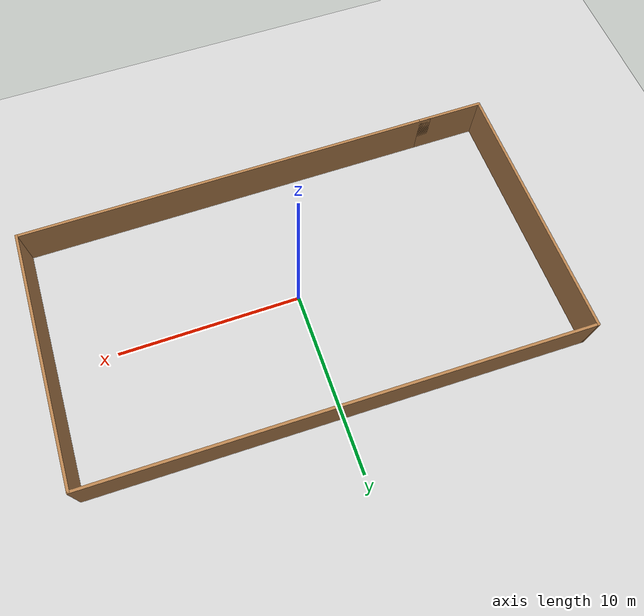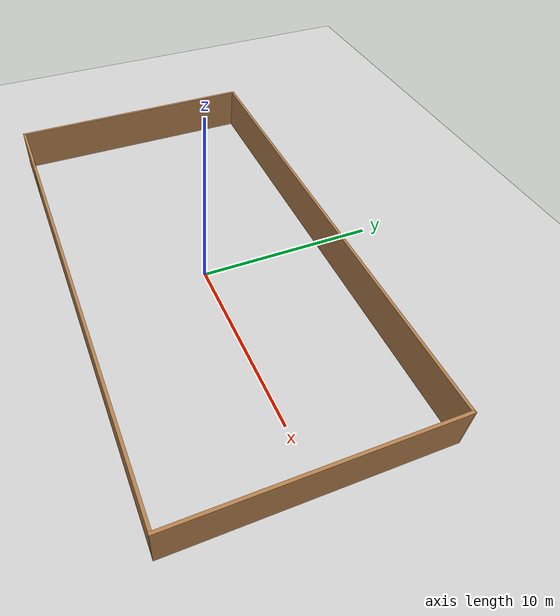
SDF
<sdf version="1.7">
 <world name="default">
  <light name="sun" type="directional">
   <pose>0 0 10 0 -0 0</pose>
   <diffuse>0.8 0.8 0.8 1</diffuse>
   <specular>0.2 0.2 0.2 1</specular>
   <attenuation>
    <range>1000</range>
    <constant>0.9</constant>
    <linear>0.01</linear>
    <quadratic>0.001</quadratic>
   </attenuation>
   <direction>-0.5 0.1 -0.9</direction>
   <spot><inner_angle>0</inner_angle><outer_angle>0</outer_angle><falloff>0</falloff></spot>
  </light>
  <model name="ground_plane">
   <static>1</static>
   <link name="link">
    <collision name="collision">
     <geometry><plane><normal>0 0 1</normal><size>100 100</size></plane></geometry>
     <surface>
      <contact><collide_bitmask>65535</collide_bitmask></contact>
      <friction><ode><mu>100</mu><mu2>50</mu2></ode></friction>
     </surface>
    </collision>
    <visual name="visual">
     <cast_shadows>0</cast_shadows>
     <geometry><plane><normal>0 0 1</normal><size>100 100</size></plane></geometry>
     <material>
      <script><uri>file://media/materials/scripts/gazebo.material</uri><name>Gazebo/Grey</name></script>
     </material>
    </visual>
   </link>
  </model>
  <gravity>0 0 -9.8</gravity>
  <magnetic_field>6e-06 2.3e-05 -4.2e-05</magnetic_field>
  <atmosphere type="adiabatic"/>
  <physics type="ode">
   <max_step_size>0.001</max_step_size>
   <real_time_factor>1</real_time_factor>
   <real_time_update_rate>1000</real_time_update_rate>
  </physics>
  <scene><ambient>0.4 0.4 0.4 1</ambient><background>0.7 0.7 0.7 1</background><shadows>1</shadows></scene>
  <spherical_coordinates>
   <surface_model>EARTH_WGS84</surface_model>
   <latitude_deg>0</latitude_deg>
   <longitude_deg>0</longitude_deg>
   <elevation>0</elevation>
   <heading_deg>0</heading_deg>
  </spherical_coordinates>
  <model name="car1_test">
   <link name="Wall_1">
    <collision name="Wall_1_Collision">
     <geometry><box><size>23.6436 0.15 2.5</size></box></geometry>
     <pose>0 0 1.25 0 -0 0</pose>
    </collision>
    <visual name="Wall_1_Visual">
     <pose>0 0 1.25 0 -0 0</pose>
     <geometry><box><size>23.6436 0.15 2.5</size></box></geometry>
     <material>
      <script><uri>file://media/materials/scripts/gazebo.material</uri><name>Gazebo/Wood</name></script>
      <ambient>1 1 1 1</ambient>
     </material>
     <meta><layer>0</layer></meta>
    </visual>
    <pose>1.4708 -7.17268 0 0 -0 0</pose>
   </link>
   <link name="Wall_10">
    <collision name="Wall_10_Collision">
     <geometry><box><size>14.0004 0.15 2.5</size></box></geometry>
     <pose>0 0 1.25 0 -0 0</pose>
    </collision>
    <visual name="Wall_10_Visual">
     <pose>0 0 1.25 0 -0 0</pose>
     <geometry><box><size>14.0004 0.15 2.5</size></box></geometry>
     <material>
      <script><uri>file://media/materials/scripts/gazebo.material</uri><name>Gazebo/Wood</name></script>
      <ambient>1 1 1 1</ambient>
     </material>
     <meta><layer>0</layer></meta>
    </visual>
    <pose>13.308 -0.253083 0 0 -0 -1.57848</pose>
   </link>
   <link name="Wall_5">
    <collision name="Wall_5_Collision">
     <geometry><box><size>3.75 0.15 2.5</size></box></geometry>
     <pose>0 0 1.25 0 -0 0</pose>
    </collision>
    <visual name="Wall_5_Visual">
     <pose>0 0 1.25 0 -0 0</pose>
     <geometry><box><size>3.75 0.15 2.5</size></box></geometry>
     <material>
      <script><uri>file://media/materials/scripts/gazebo.material</uri><name>Gazebo/Wood</name></script>
      <ambient>1 1 1 1</ambient>
     </material>
     <meta><layer>0</layer></meta>
    </visual>
    <pose>-11.5612 -7.17268 0 0 -0 0</pose>
   </link>
   <link name="Wall_8">
    <collision name="Wall_8_Collision">
     <geometry><box><size>14.5 0.15 2.5</size></box></geometry>
     <pose>0 0 1.25 0 -0 0</pose>
    </collision>
    <visual name="Wall_8_Visual">
     <pose>0 0 1.25 0 -0 0</pose>
     <geometry><box><size>14.5 0.15 2.5</size></box></geometry>
     <material>
      <script><uri>file://media/materials/scripts/gazebo.material</uri><name>Gazebo/Wood</name></script>
      <ambient>1 1 1 1</ambient>
     </material>
     <meta><layer>0</layer></meta>
    </visual>
    <pose>-13.3612 0.002321 0 0 -0 1.5708</pose>
   </link>
   <link name="Wall_9">
    <collision name="Wall_9_Collision">
     <geometry><box><size>26.8772 0.15 2.5</size></box></geometry>
     <pose>0 0 1.25 0 -0 0</pose>
    </collision>
    <visual name="Wall_9_Visual">
     <pose>0 0 1.25 0 -0 0</pose>
     <geometry><box><size>26.8772 0.15 2.5</size></box></geometry>
     <material>
      <script><uri>file://media/materials/scripts/gazebo.material</uri><name>Gazebo/Wood</name></script>
      <ambient>1 1 1 1</ambient>
     </material>
     <meta><layer>0</layer></meta>
    </visual>
    <pose>-0 6.93792 0 0 -0 -0.017916</pose>
   </link>
   <static>1</static>
  </model>
 </world>
</sdf>
